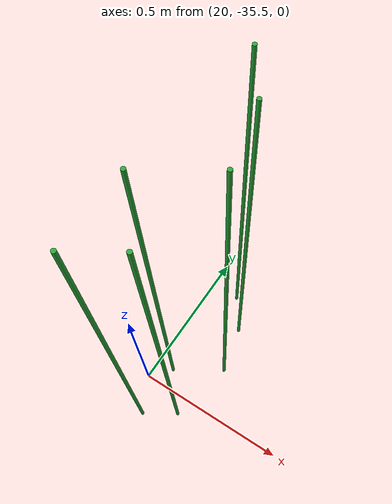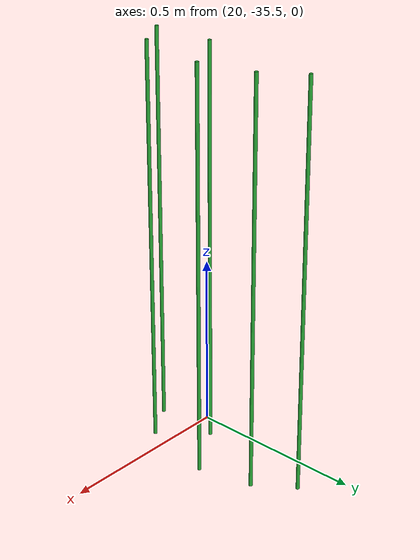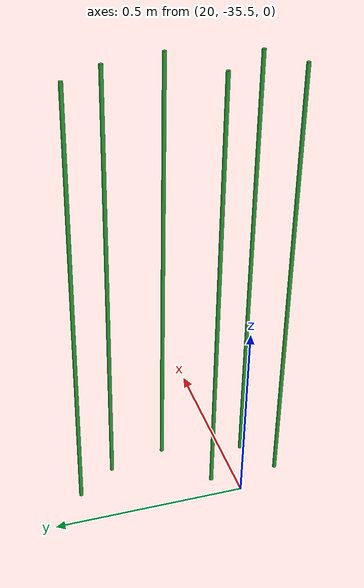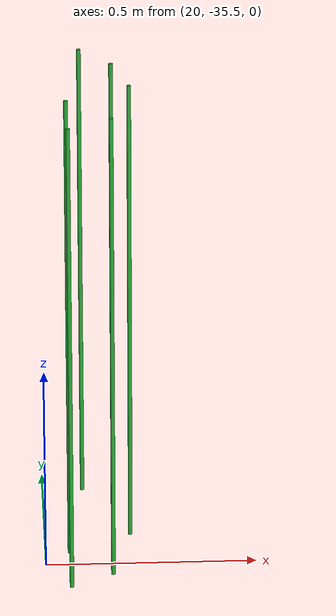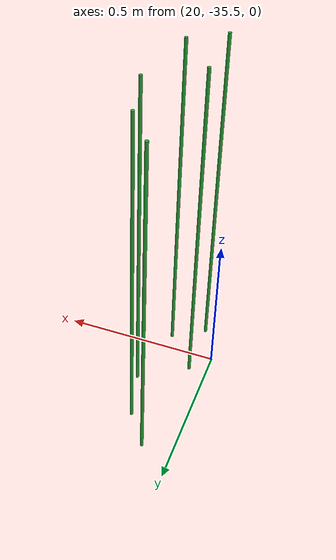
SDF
<sdf version="1.6">
 <world name="default">
  <model name="pole_27_clone_clone_252">
   <link name="link">
    <inertial>
     <mass>1</mass>
     <inertia><ixx>1</ixx><ixy>0</ixy><ixz>0</ixz><iyy>1</iyy><iyz>0</iyz><izz>1</izz></inertia>
    </inertial>
    <visual name="visual">
     <geometry><cylinder><length>1.15</length><radius>0.005</radius></cylinder></geometry>
     <material>
      <script><uri>file://media/materials/scripts/gazebo.material</uri><name>Gazebo/Green</name></script>
      <shader type="vertex"><normal_map>__default__</normal_map></shader>
      <emissive>0 0.1 0 1</emissive>
      <specular>0 0.01 0 1</specular>
      <ambient>0 0.5 0 1</ambient>
      <diffuse>0 0.05 0 1</diffuse>
     </material>
    </visual>
    <collision name="collision">
     <geometry><cylinder><radius>0.005</radius><length>1.15</length></cylinder></geometry>
     <surface>
      <friction>
       <ode><mu>1</mu><mu2>1</mu2><fdir1>0 0 0</fdir1><slip1>0</slip1><slip2>0</slip2></ode>
       <torsional>
        <coefficient>1</coefficient>
        <patch_radius>0</patch_radius>
        <surface_radius>0</surface_radius>
        <use_patch_radius>1</use_patch_radius>
        <ode><slip>0</slip></ode>
       </torsional>
      </friction>
      <bounce><restitution_coefficient>0</restitution_coefficient><threshold>1e+06</threshold></bounce>
      <contact>
       <collide_without_contact>0</collide_without_contact>
       <collide_without_contact_bitmask>1</collide_without_contact_bitmask>
       <collide_bitmask>1</collide_bitmask>
       <ode>
        <soft_cfm>0</soft_cfm>
        <soft_erp>0.2</soft_erp>
        <kp>1e+13</kp>
        <kd>1</kd>
        <max_vel>0.01</max_vel>
        <min_depth>0</min_depth>
       </ode>
       <bullet>
        <split_impulse>1</split_impulse>
        <split_impulse_penetration_threshold>-0.01</split_impulse_penetration_threshold>
        <soft_cfm>0</soft_cfm>
        <soft_erp>0.2</soft_erp>
        <kp>1e+13</kp>
        <kd>1</kd>
       </bullet>
      </contact>
     </surface>
    </collision>
   </link>
   <static>1</static>
   <pose>20.0579 -35.4359 0.575 0 -0 0</pose>
  </model>
  <model name="pole_27_clone_clone_255">
   <link name="link">
    <inertial>
     <mass>1</mass>
     <inertia><ixx>1</ixx><ixy>0</ixy><ixz>0</ixz><iyy>1</iyy><iyz>0</iyz><izz>1</izz></inertia>
    </inertial>
    <visual name="visual">
     <geometry><cylinder><length>1.15</length><radius>0.005</radius></cylinder></geometry>
     <material>
      <script><uri>file://media/materials/scripts/gazebo.material</uri><name>Gazebo/Green</name></script>
      <shader type="vertex"><normal_map>__default__</normal_map></shader>
      <emissive>0 0.1 0 1</emissive>
      <specular>0 0.01 0 1</specular>
      <ambient>0 0.5 0 1</ambient>
      <diffuse>0 0.05 0 1</diffuse>
     </material>
    </visual>
    <collision name="collision">
     <geometry><cylinder><radius>0.005</radius><length>1.15</length></cylinder></geometry>
     <surface>
      <friction>
       <ode><mu>1</mu><mu2>1</mu2><fdir1>0 0 0</fdir1><slip1>0</slip1><slip2>0</slip2></ode>
       <torsional>
        <coefficient>1</coefficient>
        <patch_radius>0</patch_radius>
        <surface_radius>0</surface_radius>
        <use_patch_radius>1</use_patch_radius>
        <ode><slip>0</slip></ode>
       </torsional>
      </friction>
      <bounce><restitution_coefficient>0</restitution_coefficient><threshold>1e+06</threshold></bounce>
      <contact>
       <collide_without_contact>0</collide_without_contact>
       <collide_without_contact_bitmask>1</collide_without_contact_bitmask>
       <collide_bitmask>1</collide_bitmask>
       <ode>
        <soft_cfm>0</soft_cfm>
        <soft_erp>0.2</soft_erp>
        <kp>1e+13</kp>
        <kd>1</kd>
        <max_vel>0.01</max_vel>
        <min_depth>0</min_depth>
       </ode>
       <bullet>
        <split_impulse>1</split_impulse>
        <split_impulse_penetration_threshold>-0.01</split_impulse_penetration_threshold>
        <soft_cfm>0</soft_cfm>
        <soft_erp>0.2</soft_erp>
        <kp>1e+13</kp>
        <kd>1</kd>
       </bullet>
      </contact>
     </surface>
    </collision>
   </link>
   <static>1</static>
   <pose>20.2061 -35.3416 0.575 0 -0 0</pose>
  </model>
  <model name="pole_27_clone_clone_257">
   <link name="link">
    <inertial>
     <mass>1</mass>
     <inertia><ixx>1</ixx><ixy>0</ixy><ixz>0</ixz><iyy>1</iyy><iyz>0</iyz><izz>1</izz></inertia>
    </inertial>
    <visual name="visual">
     <geometry><cylinder><length>1.15</length><radius>0.005</radius></cylinder></geometry>
     <material>
      <script><uri>file://media/materials/scripts/gazebo.material</uri><name>Gazebo/Green</name></script>
      <shader type="vertex"><normal_map>__default__</normal_map></shader>
      <emissive>0 0.1 0 1</emissive>
      <specular>0 0.01 0 1</specular>
      <ambient>0 0.5 0 1</ambient>
      <diffuse>0 0.05 0 1</diffuse>
     </material>
    </visual>
    <collision name="collision">
     <geometry><cylinder><radius>0.005</radius><length>1.15</length></cylinder></geometry>
     <surface>
      <friction>
       <ode><mu>1</mu><mu2>1</mu2><fdir1>0 0 0</fdir1><slip1>0</slip1><slip2>0</slip2></ode>
       <torsional>
        <coefficient>1</coefficient>
        <patch_radius>0</patch_radius>
        <surface_radius>0</surface_radius>
        <use_patch_radius>1</use_patch_radius>
        <ode><slip>0</slip></ode>
       </torsional>
      </friction>
      <bounce><restitution_coefficient>0</restitution_coefficient><threshold>1e+06</threshold></bounce>
      <contact>
       <collide_without_contact>0</collide_without_contact>
       <collide_without_contact_bitmask>1</collide_without_contact_bitmask>
       <collide_bitmask>1</collide_bitmask>
       <ode>
        <soft_cfm>0</soft_cfm>
        <soft_erp>0.2</soft_erp>
        <kp>1e+13</kp>
        <kd>1</kd>
        <max_vel>0.01</max_vel>
        <min_depth>0</min_depth>
       </ode>
       <bullet>
        <split_impulse>1</split_impulse>
        <split_impulse_penetration_threshold>-0.01</split_impulse_penetration_threshold>
        <soft_cfm>0</soft_cfm>
        <soft_erp>0.2</soft_erp>
        <kp>1e+13</kp>
        <kd>1</kd>
       </bullet>
      </contact>
     </surface>
    </collision>
   </link>
   <static>1</static>
   <pose>20.1697 -35.1899 0.575 0 -0 0</pose>
  </model>
  <model name="pole_27_clone_clone_258">
   <link name="link">
    <inertial>
     <mass>1</mass>
     <inertia><ixx>1</ixx><ixy>0</ixy><ixz>0</ixz><iyy>1</iyy><iyz>0</iyz><izz>1</izz></inertia>
    </inertial>
    <visual name="visual">
     <geometry><cylinder><length>1.15</length><radius>0.005</radius></cylinder></geometry>
     <material>
      <script><uri>file://media/materials/scripts/gazebo.material</uri><name>Gazebo/Green</name></script>
      <shader type="vertex"><normal_map>__default__</normal_map></shader>
      <emissive>0 0.1 0 1</emissive>
      <specular>0 0.01 0 1</specular>
      <ambient>0 0.5 0 1</ambient>
      <diffuse>0 0.05 0 1</diffuse>
     </material>
    </visual>
    <collision name="collision">
     <geometry><cylinder><radius>0.005</radius><length>1.15</length></cylinder></geometry>
     <surface>
      <friction>
       <ode><mu>1</mu><mu2>1</mu2><fdir1>0 0 0</fdir1><slip1>0</slip1><slip2>0</slip2></ode>
       <torsional>
        <coefficient>1</coefficient>
        <patch_radius>0</patch_radius>
        <surface_radius>0</surface_radius>
        <use_patch_radius>1</use_patch_radius>
        <ode><slip>0</slip></ode>
       </torsional>
      </friction>
      <bounce><restitution_coefficient>0</restitution_coefficient><threshold>1e+06</threshold></bounce>
      <contact>
       <collide_without_contact>0</collide_without_contact>
       <collide_without_contact_bitmask>1</collide_without_contact_bitmask>
       <collide_bitmask>1</collide_bitmask>
       <ode>
        <soft_cfm>0</soft_cfm>
        <soft_erp>0.2</soft_erp>
        <kp>1e+13</kp>
        <kd>1</kd>
        <max_vel>0.01</max_vel>
        <min_depth>0</min_depth>
       </ode>
       <bullet>
        <split_impulse>1</split_impulse>
        <split_impulse_penetration_threshold>-0.01</split_impulse_penetration_threshold>
        <soft_cfm>0</soft_cfm>
        <soft_erp>0.2</soft_erp>
        <kp>1e+13</kp>
        <kd>1</kd>
       </bullet>
      </contact>
     </surface>
    </collision>
   </link>
   <static>1</static>
   <pose>20.1577 -35.5545 0.575 0 -0 0</pose>
  </model>
  <model name="pole_27_clone_clone_261">
   <link name="link">
    <inertial>
     <mass>1</mass>
     <inertia><ixx>1</ixx><ixy>0</ixy><ixz>0</ixz><iyy>1</iyy><iyz>0</iyz><izz>1</izz></inertia>
    </inertial>
    <visual name="visual">
     <geometry><cylinder><length>1.15</length><radius>0.005</radius></cylinder></geometry>
     <material>
      <script><uri>file://media/materials/scripts/gazebo.material</uri><name>Gazebo/Green</name></script>
      <shader type="vertex"><normal_map>__default__</normal_map></shader>
      <emissive>0 0.1 0 1</emissive>
      <specular>0 0.01 0 1</specular>
      <ambient>0 0.5 0 1</ambient>
      <diffuse>0 0.05 0 1</diffuse>
     </material>
    </visual>
    <collision name="collision">
     <geometry><cylinder><radius>0.005</radius><length>1.15</length></cylinder></geometry>
     <surface>
      <friction>
       <ode><mu>1</mu><mu2>1</mu2><fdir1>0 0 0</fdir1><slip1>0</slip1><slip2>0</slip2></ode>
       <torsional>
        <coefficient>1</coefficient>
        <patch_radius>0</patch_radius>
        <surface_radius>0</surface_radius>
        <use_patch_radius>1</use_patch_radius>
        <ode><slip>0</slip></ode>
       </torsional>
      </friction>
      <bounce><restitution_coefficient>0</restitution_coefficient><threshold>1e+06</threshold></bounce>
      <contact>
       <collide_without_contact>0</collide_without_contact>
       <collide_without_contact_bitmask>1</collide_without_contact_bitmask>
       <collide_bitmask>1</collide_bitmask>
       <ode>
        <soft_cfm>0</soft_cfm>
        <soft_erp>0.2</soft_erp>
        <kp>1e+13</kp>
        <kd>1</kd>
        <max_vel>0.01</max_vel>
        <min_depth>0</min_depth>
       </ode>
       <bullet>
        <split_impulse>1</split_impulse>
        <split_impulse_penetration_threshold>-0.01</split_impulse_penetration_threshold>
        <soft_cfm>0</soft_cfm>
        <soft_erp>0.2</soft_erp>
        <kp>1e+13</kp>
        <kd>1</kd>
       </bullet>
      </contact>
     </surface>
    </collision>
   </link>
   <static>1</static>
   <pose>20.0973 -35.0876 0.575 0 -0 0</pose>
  </model>
  <model name="pole_27_clone_clone_262">
   <link name="link">
    <inertial>
     <mass>1</mass>
     <inertia><ixx>1</ixx><ixy>0</ixy><ixz>0</ixz><iyy>1</iyy><iyz>0</iyz><izz>1</izz></inertia>
    </inertial>
    <visual name="visual">
     <geometry><cylinder><length>1.15</length><radius>0.005</radius></cylinder></geometry>
     <material>
      <script><uri>file://media/materials/scripts/gazebo.material</uri><name>Gazebo/Green</name></script>
      <shader type="vertex"><normal_map>__default__</normal_map></shader>
      <emissive>0 0.1 0 1</emissive>
      <specular>0 0.01 0 1</specular>
      <ambient>0 0.5 0 1</ambient>
      <diffuse>0 0.05 0 1</diffuse>
     </material>
    </visual>
    <collision name="collision">
     <geometry><cylinder><radius>0.005</radius><length>1.15</length></cylinder></geometry>
     <surface>
      <friction>
       <ode><mu>1</mu><mu2>1</mu2><fdir1>0 0 0</fdir1><slip1>0</slip1><slip2>0</slip2></ode>
       <torsional>
        <coefficient>1</coefficient>
        <patch_radius>0</patch_radius>
        <surface_radius>0</surface_radius>
        <use_patch_radius>1</use_patch_radius>
        <ode><slip>0</slip></ode>
       </torsional>
      </friction>
      <bounce><restitution_coefficient>0</restitution_coefficient><threshold>1e+06</threshold></bounce>
      <contact>
       <collide_without_contact>0</collide_without_contact>
       <collide_without_contact_bitmask>1</collide_without_contact_bitmask>
       <collide_bitmask>1</collide_bitmask>
       <ode>
        <soft_cfm>0</soft_cfm>
        <soft_erp>0.2</soft_erp>
        <kp>1e+13</kp>
        <kd>1</kd>
        <max_vel>0.01</max_vel>
        <min_depth>0</min_depth>
       </ode>
       <bullet>
        <split_impulse>1</split_impulse>
        <split_impulse_penetration_threshold>-0.01</split_impulse_penetration_threshold>
        <soft_cfm>0</soft_cfm>
        <soft_erp>0.2</soft_erp>
        <kp>1e+13</kp>
        <kd>1</kd>
       </bullet>
      </contact>
     </surface>
    </collision>
   </link>
   <static>1</static>
   <pose>20.0578 -35.6171 0.575 0 -0 0</pose>
  </model>
 </world>
</sdf>
